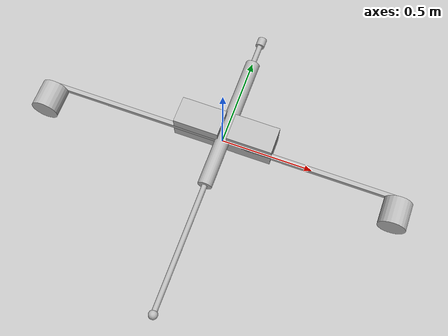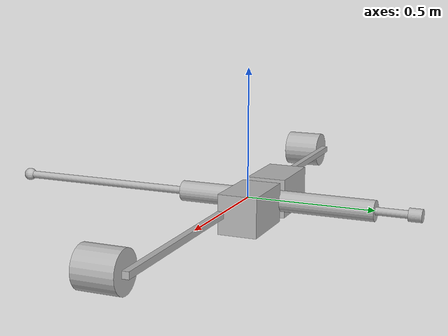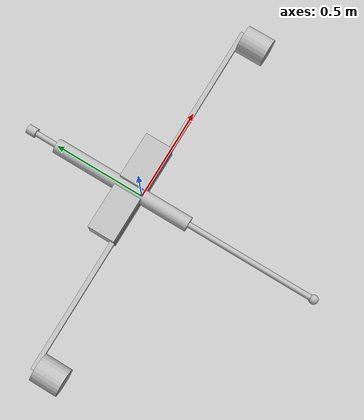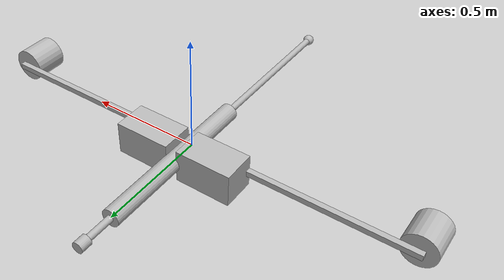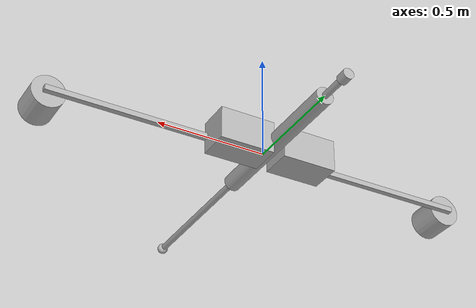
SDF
<?xml version="1.0"?>
<sdf version='1.5'>
  <model name='PlanarOneLegHopper'>
    <link name='planar_world'>
      <pose rotation_format="euler_rpy" degrees='true'>0 0 0 90 0 0</pose>
    </link>
    <joint name='planar_weld' type='fixed'>
      <parent>world</parent>
      <child>planar_world</child>
    </joint>
    <link name='body_link'>
      <inertial>
        <mass>10</mass>
        <inertia>
          <ixx>1</ixx>
          <ixy>0</ixy>
          <ixz>0</ixz>
          <iyy>1</iyy> <!-- this is the only one that matters -->
          <iyz>0</iyz>
          <izz>1</izz>
        </inertia>
      </inertial>
      <visual name='beam'>
        <pose>0 0.0025 0 0 0 0</pose>
        <geometry>
          <box>
            <size>2 0.025 0.025</size>
          </box>
        </geometry>
      </visual>
      <visual name='weight1'>
        <pose degrees="true">0.975 -0.085 0 90 0 0</pose>
        <geometry>
          <cylinder>
            <radius>0.075</radius>
            <length>0.15</length>
          </cylinder>
        </geometry>
      </visual>
      <collision name='weight1'>
        <pose degrees="true">0.975 -0.085 0 90 0 0</pose>
        <geometry>
          <cylinder>
            <radius>0.075</radius>
            <length>0.15</length>
          </cylinder>
        </geometry>
      </collision>
      <visual name='weight2'>
        <pose degrees="true">-0.975 -0.085 0 90 0 0</pose>
        <geometry>
          <cylinder>
            <radius>0.075</radius>
            <length>0.15</length>
          </cylinder>
        </geometry>
      </visual>
      <collision name='weight2'>
        <pose degrees="true">-0.975 -0.085 0 90 0 0</pose>
        <geometry>
          <cylinder>
            <radius>0.075</radius>
            <length>0.15</length>
          </cylinder>
        </geometry>
      </collision>
      <visual name='box1'>
        <pose>0.15 0.065 0 0 0 0</pose>
        <geometry>
          <box>
            <size>0.25 0.15 0.15</size>
          </box>
        </geometry>
      </visual>
      <visual name='box2'>
        <pose>-0.15 0.065 0 0 0 0</pose>
        <geometry>
          <box>
            <size>0.25 0.15 0.15</size>
          </box>
        </geometry>
      </visual>
    </link>
    <drake:joint name="body" type="planar">
      <drake:child>body_link</drake:child>
      <drake:parent>planar_world</drake:parent>
      <drake:damping>0 0 0</drake:damping>
    </drake:joint>
    <link name='piston'>
      <inertial>
        <mass>1</mass>
        <inertia>
          <ixx>1</ixx>
          <ixy>0</ixy>
          <ixz>0</ixz>
          <iyy>1</iyy>  <!-- this is the only one that matters -->
          <iyz>0</iyz>
          <izz>1</izz>
        </inertia>
      </inertial>
      <visual name='piston'>
        <pose degrees="true">0 0.115 0 90 0 0</pose>
        <geometry>
          <cylinder>
            <radius>0.04</radius>
            <length>0.775</length>
          </cylinder>
        </geometry>
      </visual>
    </link>
    <joint name='hip' type='revolute'>
      <parent>body_link</parent>
      <child>piston</child>
      <axis>
        <xyz>0 0 1</xyz>
        <limit>
          <effort>10.0</effort>
          <lower>-0.8</lower>
          <upper>0.8</upper>
        </limit>
      </axis>
    </joint>
    <link name='foot'>
      <inertial>
        <mass>1</mass>
        <inertia>
          <ixx>1</ixx>
          <ixy>0</ixy>
          <ixz>0</ixz>
          <iyy>1</iyy>  <!-- this is the only one that matters -->
          <iyz>0</iyz>
          <izz>1</izz>
        </inertia>
      </inertial>
      <visual name='rod'>
        <pose degrees="true">0 -0.1875 0 90 0 0</pose>
        <geometry>
          <cylinder>
            <radius>0.015</radius>
            <length>1.625</length>
          </cylinder>
        </geometry>
      </visual>
      <visual name='top'>
        <pose degrees="true">0 0.65 0 90 0 0</pose>
        <geometry>
          <cylinder>
            <radius>0.025</radius>
            <length>0.05</length>
          </cylinder>
        </geometry>
      </visual>
      <collision name='top'>
        <pose degrees="true">0 0.65 0 90 0 0</pose>
        <geometry>
          <cylinder>
            <radius>0.025</radius>
            <length>0.05</length>
          </cylinder>
        </geometry>
      </collision>
      <visual name='foot'>
        <pose>0 -0.9875 0 0 0 0</pose>
        <geometry>
          <sphere><radius>0.025</radius></sphere>
        </geometry>
      </visual>
      <collision name='foot'>
        <pose>0 -0.9875 0 0 0 0</pose>
        <geometry>
          <sphere><radius>0.025</radius></sphere>
        </geometry>
      </collision>
    </link>
    <joint name='leg' type='prismatic'>
      <parent>piston</parent>
      <child>foot</child>
      <axis>
        <xyz>0 1 0</xyz>
        <limit>
          <effort>10.0</effort>
          <lower>-0.125</lower>
          <upper>0.5</upper>
        </limit>
        <dynamics>
          <damping>10</damping>
          <spring_reference>0</spring_reference>
          <spring_stiffness>1000</spring_stiffness>
        </dynamics>
      </axis>
    </joint>
  </model>
</sdf>
